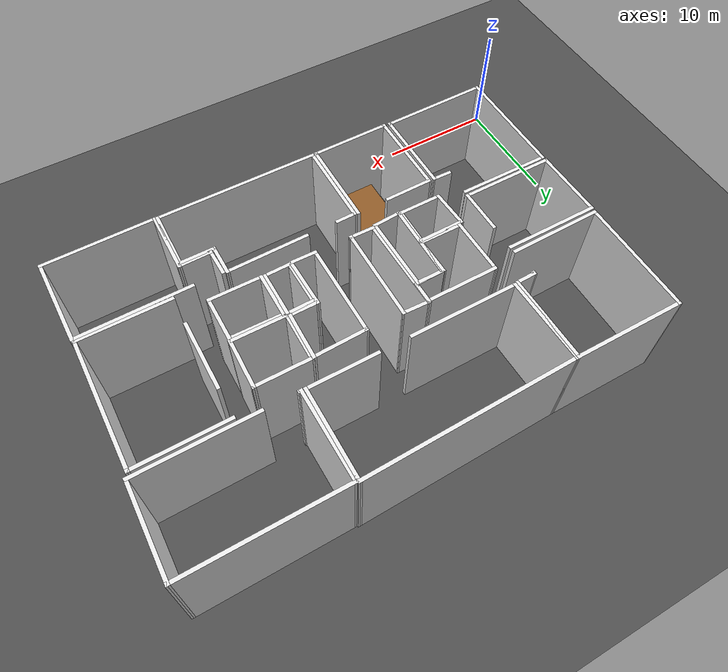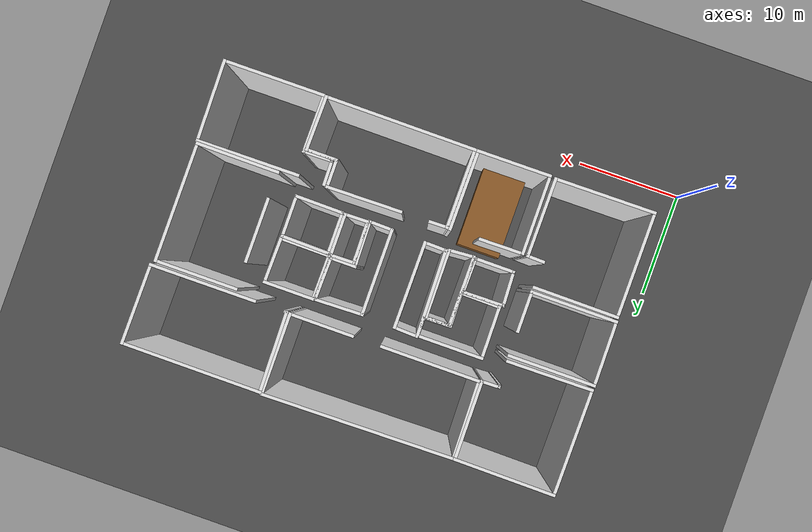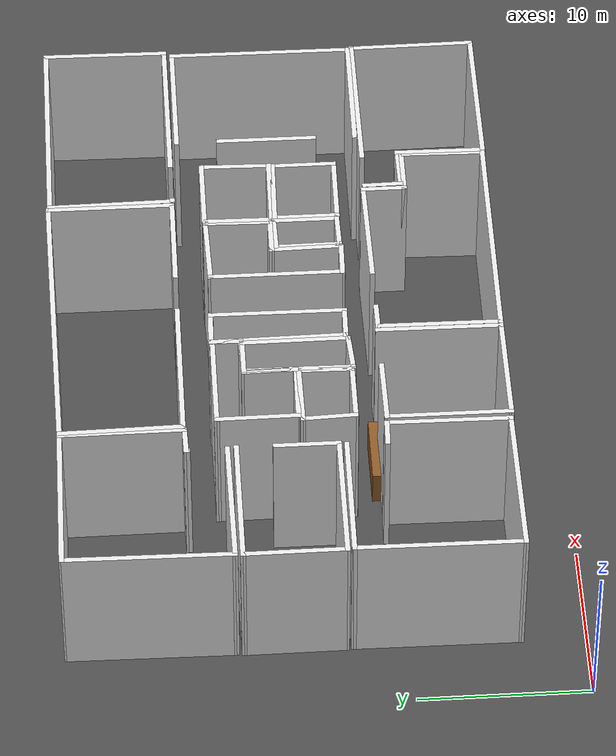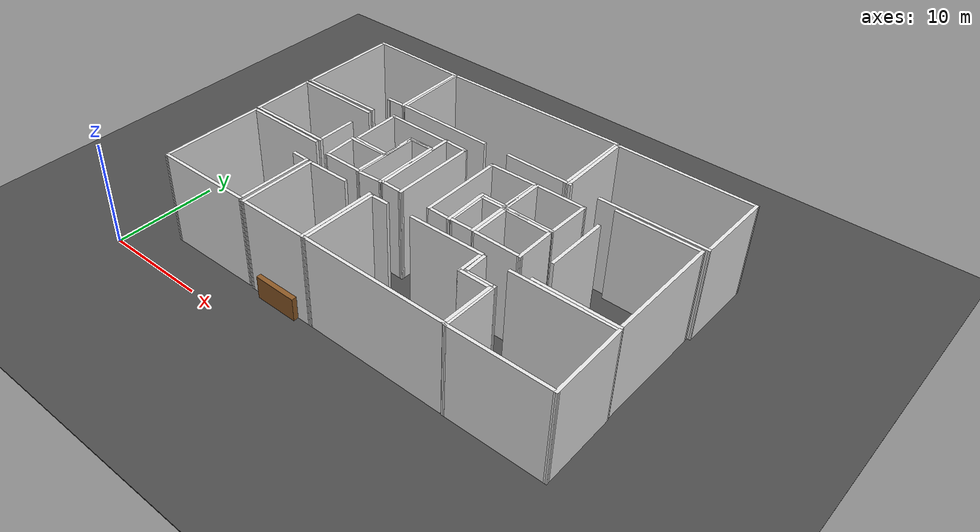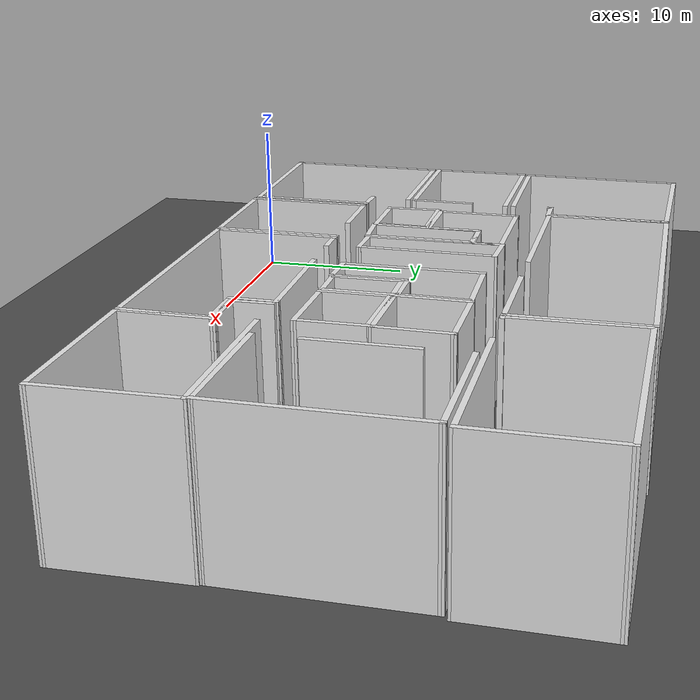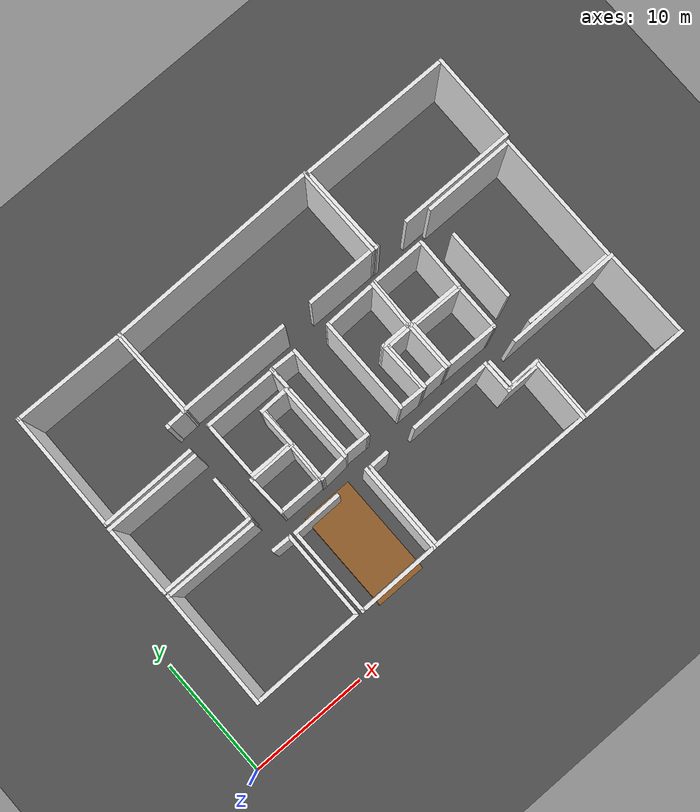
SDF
<?xml version="1.0"?>
<sdf version="1.6">
  <world name="hstm_lite_from_uploaded_office_map">
    <include><uri>model://sun</uri></include>
    <include><uri>model://ground_plane</uri></include>
    <scene><ambient>0.5 0.5 0.5 1</ambient><background>0.7 0.8 0.9 1</background></scene>
    <physics type="ode"><max_step_size>0.001</max_step_size><real_time_factor>1</real_time_factor></physics>

  <model name="visible_ground">
    <static>true</static>
    <pose>0 0 -0.05 0 0 0</pose>
    <link name="link">
      <visual name="v">
        <geometry><box><size>200 200 0.1</size></box></geometry>
        <material><ambient>0.3 0.3 0.3 1</ambient></material>
      </visual>
    </link>
  </model>

  <model name="wall_0_0">
    <static>true</static>
    <pose>39.5415 11.3295 4.5000 0 0 -0.00447</pose>
    <link name="link">
      <collision name="c">
        <geometry><box><size>7.6771 0.30000000000000004 9.0</size></box></geometry>
      </collision>
      <visual name="v">
        <geometry><box><size>7.6771 0.30000000000000004 9.0</size></box></geometry>
        <material><ambient>0.8 0.8 0.8 1</ambient><diffuse>0.9 0.9 0.9 1</diffuse></material>
      </visual>
    </link>
  </model>
  <model name="wall_1_0">
    <static>true</static>
    <pose>43.2525 16.6950 4.5000 0 0 1.56662</pose>
    <link name="link">
      <collision name="c">
        <geometry><box><size>11.0641 0.30000000000000004 9.0</size></box></geometry>
      </collision>
      <visual name="v">
        <geometry><box><size>11.0641 0.30000000000000004 9.0</size></box></geometry>
        <material><ambient>0.8 0.8 0.8 1</ambient><diffuse>0.9 0.9 0.9 1</diffuse></material>
      </visual>
    </link>
  </model>
  <model name="wall_2_0">
    <static>true</static>
    <pose>39.5820 22.0725 4.5000 0 0 -3.14037</pose>
    <link name="link">
      <collision name="c">
        <geometry><box><size>7.6860 0.30000000000000004 9.0</size></box></geometry>
      </collision>
      <visual name="v">
        <geometry><box><size>7.6860 0.30000000000000004 9.0</size></box></geometry>
        <material><ambient>0.8 0.8 0.8 1</ambient><diffuse>0.9 0.9 0.9 1</diffuse></material>
      </visual>
    </link>
  </model>
  <model name="wall_3_0">
    <static>true</static>
    <pose>35.8709 16.6793 4.5000 0 0 -1.57415</pose>
    <link name="link">
      <collision name="c">
        <geometry><box><size>6.0000 0.30000000000000004 9.0</size></box></geometry>
      </collision>
      <visual name="v">
        <geometry><box><size>6.0000 0.30000000000000004 9.0</size></box></geometry>
        <material><ambient>0.8 0.8 0.8 1</ambient><diffuse>0.9 0.9 0.9 1</diffuse></material>
      </visual>
    </link>
  </model>
  <model name="wall_4_0">
    <static>true</static>
    <pose>16.8225 3.8085 4.5000 0 0 0.00592</pose>
    <link name="link">
      <collision name="c">
        <geometry><box><size>6.8851 0.30000000000000004 9.0</size></box></geometry>
      </collision>
      <visual name="v">
        <geometry><box><size>6.8851 0.30000000000000004 9.0</size></box></geometry>
        <material><ambient>0.8 0.8 0.8 1</ambient><diffuse>0.9 0.9 0.9 1</diffuse></material>
      </visual>
    </link>
  </model>
  <model name="wall_5_0">
    <static>true</static>
    <pose>20.1375 7.4145 4.5000 0 0 1.56452</pose>
    <link name="link">
      <collision name="c">
        <geometry><box><size>7.4731 0.30000000000000004 9.0</size></box></geometry>
      </collision>
      <visual name="v">
        <geometry><box><size>7.4731 0.30000000000000004 9.0</size></box></geometry>
        <material><ambient>0.8 0.8 0.8 1</ambient><diffuse>0.9 0.9 0.9 1</diffuse></material>
      </visual>
    </link>
  </model>
  <model name="wall_6_1">
    <static>true</static>
    <pose>15.4702 10.9458 4.5000 0 0 -3.12983</pose>
    <link name="link">
      <collision name="c">
        <geometry><box><size>4.1806 0.30000000000000004 9.0</size></box></geometry>
      </collision>
      <visual name="v">
        <geometry><box><size>4.1806 0.30000000000000004 9.0</size></box></geometry>
        <material><ambient>0.8 0.8 0.8 1</ambient><diffuse>0.9 0.9 0.9 1</diffuse></material>
      </visual>
    </link>
  </model>
  <model name="wall_7_0">
    <static>true</static>
    <pose>13.5300 7.3560 4.5000 0 0 -1.57080</pose>
    <link name="link">
      <collision name="c">
        <geometry><box><size>7.4340 0.30000000000000004 9.0</size></box></geometry>
      </collision>
      <visual name="v">
        <geometry><box><size>7.4340 0.30000000000000004 9.0</size></box></geometry>
        <material><ambient>0.8 0.8 0.8 1</ambient><diffuse>0.9 0.9 0.9 1</diffuse></material>
      </visual>
    </link>
  </model>
  <model name="wall_8_0">
    <static>true</static>
    <pose>31.1399 22.5121 4.5000 0 0 0.00265</pose>
    <link name="link">
      <collision name="c">
        <geometry><box><size>0.4077 0.30000000000000004 9.0</size></box></geometry>
      </collision>
      <visual name="v">
        <geometry><box><size>0.4077 0.30000000000000004 9.0</size></box></geometry>
        <material><ambient>0.8 0.8 0.8 1</ambient><diffuse>0.9 0.9 0.9 1</diffuse></material>
      </visual>
    </link>
  </model>
  <model name="wall_8_1">
    <static>true</static>
    <pose>38.7823 22.5324 4.5000 0 0 0.00265</pose>
    <link name="link">
      <collision name="c">
        <geometry><box><size>9.8194 0.30000000000000004 9.0</size></box></geometry>
      </collision>
      <visual name="v">
        <geometry><box><size>9.8194 0.30000000000000004 9.0</size></box></geometry>
        <material><ambient>0.8 0.8 0.8 1</ambient><diffuse>0.9 0.9 0.9 1</diffuse></material>
      </visual>
    </link>
  </model>
  <model name="wall_9_0">
    <static>true</static>
    <pose>43.5825 26.1510 4.5000 0 0 1.55957</pose>
    <link name="link">
      <collision name="c">
        <geometry><box><size>7.5125 0.30000000000000004 9.0</size></box></geometry>
      </collision>
      <visual name="v">
        <geometry><box><size>7.5125 0.30000000000000004 9.0</size></box></geometry>
        <material><ambient>0.8 0.8 0.8 1</ambient><diffuse>0.9 0.9 0.9 1</diffuse></material>
      </visual>
    </link>
  </model>
  <model name="wall_10_0">
    <static>true</static>
    <pose>37.2990 29.7765 4.5000 0 0 3.13851</pose>
    <link name="link">
      <collision name="c">
        <geometry><box><size>12.9481 0.30000000000000004 9.0</size></box></geometry>
      </collision>
      <visual name="v">
        <geometry><box><size>12.9481 0.30000000000000004 9.0</size></box></geometry>
        <material><ambient>0.8 0.8 0.8 1</ambient><diffuse>0.9 0.9 0.9 1</diffuse></material>
      </visual>
    </link>
  </model>
  <model name="wall_11_0">
    <static>true</static>
    <pose>31.0305 26.1540 4.5000 0 0 -1.55556</pose>
    <link name="link">
      <collision name="c">
        <geometry><box><size>7.5848 0.30000000000000004 9.0</size></box></geometry>
      </collision>
      <visual name="v">
        <geometry><box><size>7.5848 0.30000000000000004 9.0</size></box></geometry>
        <material><ambient>0.8 0.8 0.8 1</ambient><diffuse>0.9 0.9 0.9 1</diffuse></material>
      </visual>
    </link>
  </model>
  <model name="wall_12_0">
    <static>true</static>
    <pose>8.5815 29.6790 4.5000 0 0 -0.00856</pose>
    <link name="link">
      <collision name="c">
        <geometry><box><size>9.4173 0.30000000000000004 9.0</size></box></geometry>
      </collision>
      <visual name="v">
        <geometry><box><size>9.4173 0.30000000000000004 9.0</size></box></geometry>
        <material><ambient>0.8 0.8 0.8 1</ambient><diffuse>0.9 0.9 0.9 1</diffuse></material>
      </visual>
    </link>
  </model>
  <model name="wall_13_0">
    <static>true</static>
    <pose>13.1610 26.0730 4.5000 0 0 -1.56491</pose>
    <link name="link">
      <collision name="c">
        <geometry><box><size>7.4341 0.30000000000000004 9.0</size></box></geometry>
      </collision>
      <visual name="v">
        <geometry><box><size>7.4341 0.30000000000000004 9.0</size></box></geometry>
        <material><ambient>0.8 0.8 0.8 1</ambient><diffuse>0.9 0.9 0.9 1</diffuse></material>
      </visual>
    </link>
  </model>
  <model name="wall_14_0">
    <static>true</static>
    <pose>12.3975 22.4865 4.5000 0 0 -3.11674</pose>
    <link name="link">
      <collision name="c">
        <geometry><box><size>1.8695 0.30000000000000004 9.0</size></box></geometry>
      </collision>
      <visual name="v">
        <geometry><box><size>1.8695 0.30000000000000004 9.0</size></box></geometry>
        <material><ambient>0.8 0.8 0.8 1</ambient><diffuse>0.9 0.9 0.9 1</diffuse></material>
      </visual>
    </link>
  </model>
  <model name="wall_15_0">
    <static>true</static>
    <pose>11.6136 22.4312 4.5000 0 0 -1.55285</pose>
    <link name="link">
      <collision name="c">
        <geometry><box><size>0.3716 0.30000000000000004 9.0</size></box></geometry>
      </collision>
      <visual name="v">
        <geometry><box><size>0.3716 0.30000000000000004 9.0</size></box></geometry>
        <material><ambient>0.8 0.8 0.8 1</ambient><diffuse>0.9 0.9 0.9 1</diffuse></material>
      </visual>
    </link>
  </model>
  <model name="wall_16_0">
    <static>true</static>
    <pose>7.7955 20.0880 4.5000 0 0 -3.13149</pose>
    <link name="link">
      <collision name="c">
        <geometry><box><size>8.0194 0.30000000000000004 9.0</size></box></geometry>
      </collision>
      <visual name="v">
        <geometry><box><size>8.0194 0.30000000000000004 9.0</size></box></geometry>
        <material><ambient>0.8 0.8 0.8 1</ambient><diffuse>0.9 0.9 0.9 1</diffuse></material>
      </visual>
    </link>
  </model>
  <model name="wall_17_0">
    <static>true</static>
    <pose>3.9795 24.8835 4.5000 0 0 1.56180</pose>
    <link name="link">
      <collision name="c">
        <geometry><box><size>9.9694 0.30000000000000004 9.0</size></box></geometry>
      </collision>
      <visual name="v">
        <geometry><box><size>9.9694 0.30000000000000004 9.0</size></box></geometry>
        <material><ambient>0.8 0.8 0.8 1</ambient><diffuse>0.9 0.9 0.9 1</diffuse></material>
      </visual>
    </link>
  </model>
  <model name="wall_18_0">
    <static>true</static>
    <pose>7.7970 19.6200 4.5000 0 0 0.00000</pose>
    <link name="link">
      <collision name="c">
        <geometry><box><size>8.1060 0.30000000000000004 9.0</size></box></geometry>
      </collision>
      <visual name="v">
        <geometry><box><size>8.1060 0.30000000000000004 9.0</size></box></geometry>
        <material><ambient>0.8 0.8 0.8 1</ambient><diffuse>0.9 0.9 0.9 1</diffuse></material>
      </visual>
    </link>
  </model>
  <model name="wall_19_0">
    <static>true</static>
    <pose>11.7000 15.5790 4.5000 0 0 -1.57080</pose>
    <link name="link">
      <collision name="c">
        <geometry><box><size>3.9180 0.30000000000000004 9.0</size></box></geometry>
      </collision>
      <visual name="v">
        <geometry><box><size>3.9180 0.30000000000000004 9.0</size></box></geometry>
        <material><ambient>0.8 0.8 0.8 1</ambient><diffuse>0.9 0.9 0.9 1</diffuse></material>
      </visual>
    </link>
  </model>
  <model name="wall_20_0">
    <static>true</static>
    <pose>7.8180 13.7700 4.5000 0 0 3.14159</pose>
    <link name="link">
      <collision name="c">
        <geometry><box><size>8.0640 0.30000000000000004 9.0</size></box></geometry>
      </collision>
      <visual name="v">
        <geometry><box><size>8.0640 0.30000000000000004 9.0</size></box></geometry>
        <material><ambient>0.8 0.8 0.8 1</ambient><diffuse>0.9 0.9 0.9 1</diffuse></material>
      </visual>
    </link>
  </model>
  <model name="wall_21_0">
    <static>true</static>
    <pose>3.9150 16.6950 4.5000 0 0 1.57798</pose>
    <link name="link">
      <collision name="c">
        <geometry><box><size>6.1502 0.30000000000000004 9.0</size></box></geometry>
      </collision>
      <visual name="v">
        <geometry><box><size>6.1502 0.30000000000000004 9.0</size></box></geometry>
        <material><ambient>0.8 0.8 0.8 1</ambient><diffuse>0.9 0.9 0.9 1</diffuse></material>
      </visual>
    </link>
  </model>
  <model name="wall_22_0">
    <static>true</static>
    <pose>7.7970 13.3605 4.5000 0 0 -0.00511</pose>
    <link name="link">
      <collision name="c">
        <geometry><box><size>7.9321 0.30000000000000004 9.0</size></box></geometry>
      </collision>
      <visual name="v">
        <geometry><box><size>7.9321 0.30000000000000004 9.0</size></box></geometry>
        <material><ambient>0.8 0.8 0.8 1</ambient><diffuse>0.9 0.9 0.9 1</diffuse></material>
      </visual>
    </link>
  </model>
  <model name="wall_24_0">
    <static>true</static>
    <pose>12.3330 10.9815 4.5000 0 0 -0.02708</pose>
    <link name="link">
      <collision name="c">
        <geometry><box><size>1.7405 0.30000000000000004 9.0</size></box></geometry>
      </collision>
      <visual name="v">
        <geometry><box><size>1.7405 0.30000000000000004 9.0</size></box></geometry>
        <material><ambient>0.8 0.8 0.8 1</ambient><diffuse>0.9 0.9 0.9 1</diffuse></material>
      </visual>
    </link>
  </model>
  <model name="wall_25_0">
    <static>true</static>
    <pose>13.0305 7.4145 4.5000 0 0 -1.57714</pose>
    <link name="link">
      <collision name="c">
        <geometry><box><size>7.3951 0.30000000000000004 9.0</size></box></geometry>
      </collision>
      <visual name="v">
        <geometry><box><size>7.3951 0.30000000000000004 9.0</size></box></geometry>
        <material><ambient>0.8 0.8 0.8 1</ambient><diffuse>0.9 0.9 0.9 1</diffuse></material>
      </visual>
    </link>
  </model>
  <model name="wall_26_0">
    <static>true</static>
    <pose>8.4720 3.8280 4.5000 0 0 -3.13299</pose>
    <link name="link">
      <collision name="c">
        <geometry><box><size>9.3723 0.30000000000000004 9.0</size></box></geometry>
      </collision>
      <visual name="v">
        <geometry><box><size>9.3723 0.30000000000000004 9.0</size></box></geometry>
        <material><ambient>0.8 0.8 0.8 1</ambient><diffuse>0.9 0.9 0.9 1</diffuse></material>
      </visual>
    </link>
  </model>
  <model name="wall_27_0">
    <static>true</static>
    <pose>3.9585 8.5845 4.5000 0 0 1.56610</pose>
    <link name="link">
      <collision name="c">
        <geometry><box><size>9.8911 0.30000000000000004 9.0</size></box></geometry>
      </collision>
      <visual name="v">
        <geometry><box><size>9.8911 0.30000000000000004 9.0</size></box></geometry>
        <material><ambient>0.8 0.8 0.8 1</ambient><diffuse>0.9 0.9 0.9 1</diffuse></material>
      </visual>
    </link>
  </model>
  <model name="wall_28_0">
    <static>true</static>
    <pose>21.2257 10.9729 4.5000 0 0 0.01425</pose>
    <link name="link">
      <collision name="c">
        <geometry><box><size>1.8255 0.30000000000000004 9.0</size></box></geometry>
      </collision>
      <visual name="v">
        <geometry><box><size>1.8255 0.30000000000000004 9.0</size></box></geometry>
        <material><ambient>0.8 0.8 0.8 1</ambient><diffuse>0.9 0.9 0.9 1</diffuse></material>
      </visual>
    </link>
  </model>
  <model name="wall_28_1">
    <static>true</static>
    <pose>28.0491 11.0701 4.5000 0 0 0.01425</pose>
    <link name="link">
      <collision name="c">
        <geometry><box><size>7.0226 0.30000000000000004 9.0</size></box></geometry>
      </collision>
      <visual name="v">
        <geometry><box><size>7.0226 0.30000000000000004 9.0</size></box></geometry>
        <material><ambient>0.8 0.8 0.8 1</ambient><diffuse>0.9 0.9 0.9 1</diffuse></material>
      </visual>
    </link>
  </model>
  <model name="wall_29_0">
    <static>true</static>
    <pose>31.4100 9.8895 4.5000 0 0 -1.57080</pose>
    <link name="link">
      <collision name="c">
        <geometry><box><size>2.7570 0.30000000000000004 9.0</size></box></geometry>
      </collision>
      <visual name="v">
        <geometry><box><size>2.7570 0.30000000000000004 9.0</size></box></geometry>
        <material><ambient>0.8 0.8 0.8 1</ambient><diffuse>0.9 0.9 0.9 1</diffuse></material>
      </visual>
    </link>
  </model>
  <model name="wall_30_0">
    <static>true</static>
    <pose>32.7840 8.6610 4.5000 0 0 0.00000</pose>
    <link name="link">
      <collision name="c">
        <geometry><box><size>3.0480 0.30000000000000004 9.0</size></box></geometry>
      </collision>
      <visual name="v">
        <geometry><box><size>3.0480 0.30000000000000004 9.0</size></box></geometry>
        <material><ambient>0.8 0.8 0.8 1</ambient><diffuse>0.9 0.9 0.9 1</diffuse></material>
      </visual>
    </link>
  </model>
  <model name="wall_31_0">
    <static>true</static>
    <pose>34.1160 6.2250 4.5000 0 0 -1.58804</pose>
    <link name="link">
      <collision name="c">
        <geometry><box><size>5.1727 0.30000000000000004 9.0</size></box></geometry>
      </collision>
      <visual name="v">
        <geometry><box><size>5.1727 0.30000000000000004 9.0</size></box></geometry>
        <material><ambient>0.8 0.8 0.8 1</ambient><diffuse>0.9 0.9 0.9 1</diffuse></material>
      </visual>
    </link>
  </model>
  <model name="wall_32_0">
    <static>true</static>
    <pose>27.2475 3.8085 4.5000 0 0 3.13874</pose>
    <link name="link">
      <collision name="c">
        <geometry><box><size>13.9531 0.30000000000000004 9.0</size></box></geometry>
      </collision>
      <visual name="v">
        <geometry><box><size>13.9531 0.30000000000000004 9.0</size></box></geometry>
        <material><ambient>0.8 0.8 0.8 1</ambient><diffuse>0.9 0.9 0.9 1</diffuse></material>
      </visual>
    </link>
  </model>
  <model name="wall_33_0">
    <static>true</static>
    <pose>20.4420 7.3950 4.5000 0 0 1.56491</pose>
    <link name="link">
      <collision name="c">
        <geometry><box><size>7.4341 0.30000000000000004 9.0</size></box></geometry>
      </collision>
      <visual name="v">
        <geometry><box><size>7.4341 0.30000000000000004 9.0</size></box></geometry>
        <material><ambient>0.8 0.8 0.8 1</ambient><diffuse>0.9 0.9 0.9 1</diffuse></material>
      </visual>
    </link>
  </model>
  <model name="wall_34_0">
    <static>true</static>
    <pose>38.7245 11.0481 4.5000 0 0 0.00673</pose>
    <link name="link">
      <collision name="c">
        <geometry><box><size>9.4852 0.30000000000000004 9.0</size></box></geometry>
      </collision>
      <visual name="v">
        <geometry><box><size>9.4852 0.30000000000000004 9.0</size></box></geometry>
        <material><ambient>0.8 0.8 0.8 1</ambient><diffuse>0.9 0.9 0.9 1</diffuse></material>
      </visual>
    </link>
  </model>
  <model name="wall_35_0">
    <static>true</static>
    <pose>43.3620 7.4340 4.5000 0 0 -1.55845</pose>
    <link name="link">
      <collision name="c">
        <geometry><box><size>7.5906 0.30000000000000004 9.0</size></box></geometry>
      </collision>
      <visual name="v">
        <geometry><box><size>7.5906 0.30000000000000004 9.0</size></box></geometry>
        <material><ambient>0.8 0.8 0.8 1</ambient><diffuse>0.9 0.9 0.9 1</diffuse></material>
      </visual>
    </link>
  </model>
  <model name="wall_36_0">
    <static>true</static>
    <pose>38.8485 3.7695 4.5000 0 0 -3.13731</pose>
    <link name="link">
      <collision name="c">
        <geometry><box><size>9.4171 0.30000000000000004 9.0</size></box></geometry>
      </collision>
      <visual name="v">
        <geometry><box><size>9.4171 0.30000000000000004 9.0</size></box></geometry>
        <material><ambient>0.8 0.8 0.8 1</ambient><diffuse>0.9 0.9 0.9 1</diffuse></material>
      </visual>
    </link>
  </model>
  <model name="wall_37_0">
    <static>true</static>
    <pose>34.3125 6.3225 4.5000 0 0 1.56205</pose>
    <link name="link">
      <collision name="c">
        <geometry><box><size>5.4452 0.30000000000000004 9.0</size></box></geometry>
      </collision>
      <visual name="v">
        <geometry><box><size>5.4452 0.30000000000000004 9.0</size></box></geometry>
        <material><ambient>0.8 0.8 0.8 1</ambient><diffuse>0.9 0.9 0.9 1</diffuse></material>
      </visual>
    </link>
  </model>
  <model name="wall_38_0">
    <static>true</static>
    <pose>33.0480 8.8755 4.5000 0 0 -3.12644</pose>
    <link name="link">
      <collision name="c">
        <geometry><box><size>2.8743 0.30000000000000004 9.0</size></box></geometry>
      </collision>
      <visual name="v">
        <geometry><box><size>2.8743 0.30000000000000004 9.0</size></box></geometry>
        <material><ambient>0.8 0.8 0.8 1</ambient><diffuse>0.9 0.9 0.9 1</diffuse></material>
      </visual>
    </link>
  </model>
  <model name="wall_39_0">
    <static>true</static>
    <pose>31.7400 9.9285 4.5000 0 0 1.59037</pose>
    <link name="link">
      <collision name="c">
        <geometry><box><size>2.4454 0.30000000000000004 9.0</size></box></geometry>
      </collision>
      <visual name="v">
        <geometry><box><size>2.4454 0.30000000000000004 9.0</size></box></geometry>
        <material><ambient>0.8 0.8 0.8 1</ambient><diffuse>0.9 0.9 0.9 1</diffuse></material>
      </visual>
    </link>
  </model>
  <model name="wall_40_0">
    <static>true</static>
    <pose>15.4515 15.7395 4.5000 0 0 0.01065</pose>
    <link name="link">
      <collision name="c">
        <geometry><box><size>3.9632 0.30000000000000004 9.0</size></box></geometry>
      </collision>
      <visual name="v">
        <geometry><box><size>3.9632 0.30000000000000004 9.0</size></box></geometry>
        <material><ambient>0.8 0.8 0.8 1</ambient><diffuse>0.9 0.9 0.9 1</diffuse></material>
      </visual>
    </link>
  </model>
  <model name="wall_41_0">
    <static>true</static>
    <pose>17.2605 14.2185 4.5000 0 0 -1.58540</pose>
    <link name="link">
      <collision name="c">
        <geometry><box><size>3.3813 0.30000000000000004 9.0</size></box></geometry>
      </collision>
      <visual name="v">
        <geometry><box><size>3.3813 0.30000000000000004 9.0</size></box></geometry>
        <material><ambient>0.8 0.8 0.8 1</ambient><diffuse>0.9 0.9 0.9 1</diffuse></material>
      </visual>
    </link>
  </model>
  <model name="wall_42_0">
    <static>true</static>
    <pose>15.4950 12.6780 4.5000 0 0 3.14159</pose>
    <link name="link">
      <collision name="c">
        <geometry><box><size>3.7860 0.30000000000000004 9.0</size></box></geometry>
      </collision>
      <visual name="v">
        <geometry><box><size>3.7860 0.30000000000000004 9.0</size></box></geometry>
        <material><ambient>0.8 0.8 0.8 1</ambient><diffuse>0.9 0.9 0.9 1</diffuse></material>
      </visual>
    </link>
  </model>
  <model name="wall_43_0">
    <static>true</static>
    <pose>13.6860 14.1990 4.5000 0 0 1.61416</pose>
    <link name="link">
      <collision name="c">
        <geometry><box><size>3.3449 0.30000000000000004 9.0</size></box></geometry>
      </collision>
      <visual name="v">
        <geometry><box><size>3.3449 0.30000000000000004 9.0</size></box></geometry>
        <material><ambient>0.8 0.8 0.8 1</ambient><diffuse>0.9 0.9 0.9 1</diffuse></material>
      </visual>
    </link>
  </model>
  <model name="wall_44_0">
    <static>true</static>
    <pose>28.0980 16.5585 4.5000 0 0 0.01862</pose>
    <link name="link">
      <collision name="c">
        <geometry><box><size>2.3944 0.30000000000000004 9.0</size></box></geometry>
      </collision>
      <visual name="v">
        <geometry><box><size>2.3944 0.30000000000000004 9.0</size></box></geometry>
        <material><ambient>0.8 0.8 0.8 1</ambient><diffuse>0.9 0.9 0.9 1</diffuse></material>
      </visual>
    </link>
  </model>
  <model name="wall_45_0">
    <static>true</static>
    <pose>29.1450 14.7060 4.5000 0 0 -1.57080</pose>
    <link name="link">
      <collision name="c">
        <geometry><box><size>4.0440 0.30000000000000004 9.0</size></box></geometry>
      </collision>
      <visual name="v">
        <geometry><box><size>4.0440 0.30000000000000004 9.0</size></box></geometry>
        <material><ambient>0.8 0.8 0.8 1</ambient><diffuse>0.9 0.9 0.9 1</diffuse></material>
      </visual>
    </link>
  </model>
  <model name="wall_46_0">
    <static>true</static>
    <pose>28.1205 12.8145 4.5000 0 0 -3.12256</pose>
    <link name="link">
      <collision name="c">
        <geometry><box><size>2.3494 0.30000000000000004 9.0</size></box></geometry>
      </collision>
      <visual name="v">
        <geometry><box><size>2.3494 0.30000000000000004 9.0</size></box></geometry>
        <material><ambient>0.8 0.8 0.8 1</ambient><diffuse>0.9 0.9 0.9 1</diffuse></material>
      </visual>
    </link>
  </model>
  <model name="wall_47_0">
    <static>true</static>
    <pose>27.0735 14.6670 4.5000 0 0 1.58281</pose>
    <link name="link">
      <collision name="c">
        <geometry><box><size>4.0443 0.30000000000000004 9.0</size></box></geometry>
      </collision>
      <visual name="v">
        <geometry><box><size>4.0443 0.30000000000000004 9.0</size></box></geometry>
        <material><ambient>0.8 0.8 0.8 1</ambient><diffuse>0.9 0.9 0.9 1</diffuse></material>
      </visual>
    </link>
  </model>
  <model name="wall_48_0">
    <static>true</static>
    <pose>31.5225 16.4610 4.5000 0 0 -0.01845</pose>
    <link name="link">
      <collision name="c">
        <geometry><box><size>4.5277 0.30000000000000004 9.0</size></box></geometry>
      </collision>
      <visual name="v">
        <geometry><box><size>4.5277 0.30000000000000004 9.0</size></box></geometry>
        <material><ambient>0.8 0.8 0.8 1</ambient><diffuse>0.9 0.9 0.9 1</diffuse></material>
      </visual>
    </link>
  </model>
  <model name="wall_49_0">
    <static>true</static>
    <pose>33.6375 14.5890 4.5000 0 0 -1.56998</pose>
    <link name="link">
      <collision name="c">
        <geometry><box><size>3.9660 0.30000000000000004 9.0</size></box></geometry>
      </collision>
      <visual name="v">
        <geometry><box><size>3.9660 0.30000000000000004 9.0</size></box></geometry>
        <material><ambient>0.8 0.8 0.8 1</ambient><diffuse>0.9 0.9 0.9 1</diffuse></material>
      </visual>
    </link>
  </model>
  <model name="wall_50_0">
    <static>true</static>
    <pose>31.5240 12.7755 4.5000 0 0 3.13237</pose>
    <link name="link">
      <collision name="c">
        <geometry><box><size>4.5302 0.30000000000000004 9.0</size></box></geometry>
      </collision>
      <visual name="v">
        <geometry><box><size>4.5302 0.30000000000000004 9.0</size></box></geometry>
        <material><ambient>0.8 0.8 0.8 1</ambient><diffuse>0.9 0.9 0.9 1</diffuse></material>
      </visual>
    </link>
  </model>
  <model name="wall_51_0">
    <static>true</static>
    <pose>29.4090 14.6475 4.5000 0 0 1.57080</pose>
    <link name="link">
      <collision name="c">
        <geometry><box><size>4.0050 0.30000000000000004 9.0</size></box></geometry>
      </collision>
      <visual name="v">
        <geometry><box><size>4.0050 0.30000000000000004 9.0</size></box></geometry>
        <material><ambient>0.8 0.8 0.8 1</ambient><diffuse>0.9 0.9 0.9 1</diffuse></material>
      </visual>
    </link>
  </model>
  <model name="wall_52_0">
    <static>true</static>
    <pose>20.8140 20.6730 4.5000 0 0 -0.03723</pose>
    <link name="link">
      <collision name="c">
        <geometry><box><size>2.3955 0.30000000000000004 9.0</size></box></geometry>
      </collision>
      <visual name="v">
        <geometry><box><size>2.3955 0.30000000000000004 9.0</size></box></geometry>
        <material><ambient>0.8 0.8 0.8 1</ambient><diffuse>0.9 0.9 0.9 1</diffuse></material>
      </visual>
    </link>
  </model>
  <model name="wall_53_0">
    <static>true</static>
    <pose>21.8400 16.7340 4.5000 0 0 -1.57618</pose>
    <link name="link">
      <collision name="c">
        <geometry><box><size>8.1001 0.30000000000000004 9.0</size></box></geometry>
      </collision>
      <visual name="v">
        <geometry><box><size>8.1001 0.30000000000000004 9.0</size></box></geometry>
        <material><ambient>0.8 0.8 0.8 1</ambient><diffuse>0.9 0.9 0.9 1</diffuse></material>
      </visual>
    </link>
  </model>
  <model name="wall_54_0">
    <static>true</static>
    <pose>20.8590 12.8535 4.5000 0 0 3.12128</pose>
    <link name="link">
      <collision name="c">
        <geometry><box><size>2.2204 0.30000000000000004 9.0</size></box></geometry>
      </collision>
      <visual name="v">
        <geometry><box><size>2.2204 0.30000000000000004 9.0</size></box></geometry>
        <material><ambient>0.8 0.8 0.8 1</ambient><diffuse>0.9 0.9 0.9 1</diffuse></material>
      </visual>
    </link>
  </model>
  <model name="wall_55_0">
    <static>true</static>
    <pose>19.8330 16.7925 4.5000 0 0 1.58763</pose>
    <link name="link">
      <collision name="c">
        <geometry><box><size>8.1401 0.30000000000000004 9.0</size></box></geometry>
      </collision>
      <visual name="v">
        <geometry><box><size>8.1401 0.30000000000000004 9.0</size></box></geometry>
        <material><ambient>0.8 0.8 0.8 1</ambient><diffuse>0.9 0.9 0.9 1</diffuse></material>
      </visual>
    </link>
  </model>
  <model name="wall_56_0">
    <static>true</static>
    <pose>27.0075 20.5755 4.5000 0 0 0.02736</pose>
    <link name="link">
      <collision name="c">
        <geometry><box><size>4.5766 0.30000000000000004 9.0</size></box></geometry>
      </collision>
      <visual name="v">
        <geometry><box><size>4.5766 0.30000000000000004 9.0</size></box></geometry>
        <material><ambient>0.8 0.8 0.8 1</ambient><diffuse>0.9 0.9 0.9 1</diffuse></material>
      </visual>
    </link>
  </model>
  <model name="wall_57_0">
    <static>true</static>
    <pose>29.1015 18.7230 4.5000 0 0 -1.59356</pose>
    <link name="link">
      <collision name="c">
        <geometry><box><size>4.1230 0.30000000000000004 9.0</size></box></geometry>
      </collision>
      <visual name="v">
        <geometry><box><size>4.1230 0.30000000000000004 9.0</size></box></geometry>
        <material><ambient>0.8 0.8 0.8 1</ambient><diffuse>0.9 0.9 0.9 1</diffuse></material>
      </visual>
    </link>
  </model>
  <model name="wall_58_0">
    <static>true</static>
    <pose>27.9450 16.8120 4.5000 0 0 3.14159</pose>
    <link name="link">
      <collision name="c">
        <geometry><box><size>2.5260 0.30000000000000004 9.0</size></box></geometry>
      </collision>
      <visual name="v">
        <geometry><box><size>2.5260 0.30000000000000004 9.0</size></box></geometry>
        <material><ambient>0.8 0.8 0.8 1</ambient><diffuse>0.9 0.9 0.9 1</diffuse></material>
      </visual>
    </link>
  </model>
  <model name="wall_59_0">
    <static>true</static>
    <pose>26.8755 14.7645 4.5000 0 0 -1.54955</pose>
    <link name="link">
      <collision name="c">
        <geometry><box><size>4.3959 0.30000000000000004 9.0</size></box></geometry>
      </collision>
      <visual name="v">
        <geometry><box><size>4.3959 0.30000000000000004 9.0</size></box></geometry>
        <material><ambient>0.8 0.8 0.8 1</ambient><diffuse>0.9 0.9 0.9 1</diffuse></material>
      </visual>
    </link>
  </model>
  <model name="wall_60_0">
    <static>true</static>
    <pose>25.8945 12.7365 4.5000 0 0 3.12256</pose>
    <link name="link">
      <collision name="c">
        <geometry><box><size>2.3494 0.30000000000000004 9.0</size></box></geometry>
      </collision>
      <visual name="v">
        <geometry><box><size>2.3494 0.30000000000000004 9.0</size></box></geometry>
        <material><ambient>0.8 0.8 0.8 1</ambient><diffuse>0.9 0.9 0.9 1</diffuse></material>
      </visual>
    </link>
  </model>
  <model name="wall_61_0">
    <static>true</static>
    <pose>24.8700 16.6365 4.5000 0 0 1.57080</pose>
    <link name="link">
      <collision name="c">
        <geometry><box><size>8.0610 0.30000000000000004 9.0</size></box></geometry>
      </collision>
      <visual name="v">
        <geometry><box><size>8.0610 0.30000000000000004 9.0</size></box></geometry>
        <material><ambient>0.8 0.8 0.8 1</ambient><diffuse>0.9 0.9 0.9 1</diffuse></material>
      </visual>
    </link>
  </model>
  <model name="wall_62_0">
    <static>true</static>
    <pose>17.4345 15.7590 4.5000 0 0 1.56367</pose>
    <link name="link">
      <collision name="c">
        <geometry><box><size>6.6182 0.30000000000000004 9.0</size></box></geometry>
      </collision>
      <visual name="v">
        <geometry><box><size>6.6182 0.30000000000000004 9.0</size></box></geometry>
        <material><ambient>0.8 0.8 0.8 1</ambient><diffuse>0.9 0.9 0.9 1</diffuse></material>
      </visual>
    </link>
  </model>
  <model name="wall_63_0">
    <static>true</static>
    <pose>18.5250 18.9180 4.5000 0 0 0.00000</pose>
    <link name="link">
      <collision name="c">
        <geometry><box><size>2.4360 0.30000000000000004 9.0</size></box></geometry>
      </collision>
      <visual name="v">
        <geometry><box><size>2.4360 0.30000000000000004 9.0</size></box></geometry>
        <material><ambient>0.8 0.8 0.8 1</ambient><diffuse>0.9 0.9 0.9 1</diffuse></material>
      </visual>
    </link>
  </model>
  <model name="wall_64_0">
    <static>true</static>
    <pose>19.6155 15.8370 4.5000 0 0 -1.56349</pose>
    <link name="link">
      <collision name="c">
        <geometry><box><size>6.4622 0.30000000000000004 9.0</size></box></geometry>
      </collision>
      <visual name="v">
        <geometry><box><size>6.4622 0.30000000000000004 9.0</size></box></geometry>
        <material><ambient>0.8 0.8 0.8 1</ambient><diffuse>0.9 0.9 0.9 1</diffuse></material>
      </visual>
    </link>
  </model>
  <model name="wall_65_0">
    <static>true</static>
    <pose>18.5250 12.6780 4.5000 0 0 -3.07163</pose>
    <link name="link">
      <collision name="c">
        <geometry><box><size>2.5315 0.30000000000000004 9.0</size></box></geometry>
      </collision>
      <visual name="v">
        <geometry><box><size>2.5315 0.30000000000000004 9.0</size></box></geometry>
        <material><ambient>0.8 0.8 0.8 1</ambient><diffuse>0.9 0.9 0.9 1</diffuse></material>
      </visual>
    </link>
  </model>
  <model name="wall_66_0">
    <static>true</static>
    <pose>31.5435 20.6730 4.5000 0 0 0.00000</pose>
    <link name="link">
      <collision name="c">
        <geometry><box><size>4.7490 0.30000000000000004 9.0</size></box></geometry>
      </collision>
      <visual name="v">
        <geometry><box><size>4.7490 0.30000000000000004 9.0</size></box></geometry>
        <material><ambient>0.8 0.8 0.8 1</ambient><diffuse>0.9 0.9 0.9 1</diffuse></material>
      </visual>
    </link>
  </model>
  <model name="wall_67_0">
    <static>true</static>
    <pose>33.7245 18.6645 4.5000 0 0 -1.59245</pose>
    <link name="link">
      <collision name="c">
        <geometry><box><size>4.3179 0.30000000000000004 9.0</size></box></geometry>
      </collision>
      <visual name="v">
        <geometry><box><size>4.3179 0.30000000000000004 9.0</size></box></geometry>
        <material><ambient>0.8 0.8 0.8 1</ambient><diffuse>0.9 0.9 0.9 1</diffuse></material>
      </visual>
    </link>
  </model>
  <model name="wall_68_0">
    <static>true</static>
    <pose>31.4775 16.6755 4.5000 0 0 3.13274</pose>
    <link name="link">
      <collision name="c">
        <geometry><box><size>4.7072 0.30000000000000004 9.0</size></box></geometry>
      </collision>
      <visual name="v">
        <geometry><box><size>4.7072 0.30000000000000004 9.0</size></box></geometry>
        <material><ambient>0.8 0.8 0.8 1</ambient><diffuse>0.9 0.9 0.9 1</diffuse></material>
      </visual>
    </link>
  </model>
  <model name="wall_69_0">
    <static>true</static>
    <pose>29.2965 18.6840 4.5000 0 0 1.55948</pose>
    <link name="link">
      <collision name="c">
        <geometry><box><size>4.2783 0.30000000000000004 9.0</size></box></geometry>
      </collision>
      <visual name="v">
        <geometry><box><size>4.2783 0.30000000000000004 9.0</size></box></geometry>
        <material><ambient>0.8 0.8 0.8 1</ambient><diffuse>0.9 0.9 0.9 1</diffuse></material>
      </visual>
    </link>
  </model>
  <model name="wall_70_0">
    <static>true</static>
    <pose>16.7955 20.6340 4.5000 0 0 0.00000</pose>
    <link name="link">
      <collision name="c">
        <geometry><box><size>6.1890 0.30000000000000004 9.0</size></box></geometry>
      </collision>
      <visual name="v">
        <geometry><box><size>6.1890 0.30000000000000004 9.0</size></box></geometry>
        <material><ambient>0.8 0.8 0.8 1</ambient><diffuse>0.9 0.9 0.9 1</diffuse></material>
      </visual>
    </link>
  </model>
  <model name="wall_71_0">
    <static>true</static>
    <pose>19.7400 19.8150 4.5000 0 0 -1.57080</pose>
    <link name="link">
      <collision name="c">
        <geometry><box><size>1.9380 0.30000000000000004 9.0</size></box></geometry>
      </collision>
      <visual name="v">
        <geometry><box><size>1.9380 0.30000000000000004 9.0</size></box></geometry>
        <material><ambient>0.8 0.8 0.8 1</ambient><diffuse>0.9 0.9 0.9 1</diffuse></material>
      </visual>
    </link>
  </model>
  <model name="wall_72_0">
    <static>true</static>
    <pose>18.5400 18.9570 4.5000 0 0 -3.10910</pose>
    <link name="link">
      <collision name="c">
        <geometry><box><size>2.7013 0.30000000000000004 9.0</size></box></geometry>
      </collision>
      <visual name="v">
        <geometry><box><size>2.7013 0.30000000000000004 9.0</size></box></geometry>
        <material><ambient>0.8 0.8 0.8 1</ambient><diffuse>0.9 0.9 0.9 1</diffuse></material>
      </visual>
    </link>
  </model>
  <model name="wall_73_0">
    <static>true</static>
    <pose>17.3625 17.4165 4.5000 0 0 -1.55581</pose>
    <link name="link">
      <collision name="c">
        <geometry><box><size>3.3033 0.30000000000000004 9.0</size></box></geometry>
      </collision>
      <visual name="v">
        <geometry><box><size>3.3033 0.30000000000000004 9.0</size></box></geometry>
        <material><ambient>0.8 0.8 0.8 1</ambient><diffuse>0.9 0.9 0.9 1</diffuse></material>
      </visual>
    </link>
  </model>
  <model name="wall_74_0">
    <static>true</static>
    <pose>15.6405 15.9345 4.5000 0 0 3.13042</pose>
    <link name="link">
      <collision name="c">
        <geometry><box><size>3.7892 0.30000000000000004 9.0</size></box></geometry>
      </collision>
      <visual name="v">
        <geometry><box><size>3.7892 0.30000000000000004 9.0</size></box></geometry>
        <material><ambient>0.8 0.8 0.8 1</ambient><diffuse>0.9 0.9 0.9 1</diffuse></material>
      </visual>
    </link>
  </model>
  <model name="wall_75_0">
    <static>true</static>
    <pose>13.8735 18.2940 4.5000 0 0 1.58041</pose>
    <link name="link">
      <collision name="c">
        <geometry><box><size>4.9802 0.30000000000000004 9.0</size></box></geometry>
      </collision>
      <visual name="v">
        <geometry><box><size>4.9802 0.30000000000000004 9.0</size></box></geometry>
        <material><ambient>0.8 0.8 0.8 1</ambient><diffuse>0.9 0.9 0.9 1</diffuse></material>
      </visual>
    </link>
  </model>
  <model name="wall_76_0">
    <static>true</static>
    <pose>22.0275 29.7645 4.5000 0 0 0.01459</pose>
    <link name="link">
      <collision name="c">
        <geometry><box><size>17.7769 0.30000000000000004 9.0</size></box></geometry>
      </collision>
      <visual name="v">
        <geometry><box><size>17.7769 0.30000000000000004 9.0</size></box></geometry>
        <material><ambient>0.8 0.8 0.8 1</ambient><diffuse>0.9 0.9 0.9 1</diffuse></material>
      </visual>
    </link>
  </model>
  <model name="wall_77_0">
    <static>true</static>
    <pose>30.7650 26.2185 4.5000 0 0 -1.57080</pose>
    <link name="link">
      <collision name="c">
        <geometry><box><size>7.6470 0.30000000000000004 9.0</size></box></geometry>
      </collision>
      <visual name="v">
        <geometry><box><size>7.6470 0.30000000000000004 9.0</size></box></geometry>
        <material><ambient>0.8 0.8 0.8 1</ambient><diffuse>0.9 0.9 0.9 1</diffuse></material>
      </visual>
    </link>
  </model>
  <model name="wall_78_0">
    <static>true</static>
    <pose>27.9046 22.5500 4.5000 0 0 3.13986</pose>
    <link name="link">
      <collision name="c">
        <geometry><box><size>6.0208 0.30000000000000004 9.0</size></box></geometry>
      </collision>
      <visual name="v">
        <geometry><box><size>6.0208 0.30000000000000004 9.0</size></box></geometry>
        <material><ambient>0.8 0.8 0.8 1</ambient><diffuse>0.9 0.9 0.9 1</diffuse></material>
      </visual>
    </link>
  </model>
  <model name="wall_78_1">
    <static>true</static>
    <pose>17.8891 22.5673 4.5000 0 0 3.13986</pose>
    <link name="link">
      <collision name="c">
        <geometry><box><size>9.2102 0.30000000000000004 9.0</size></box></geometry>
      </collision>
      <visual name="v">
        <geometry><box><size>9.2102 0.30000000000000004 9.0</size></box></geometry>
        <material><ambient>0.8 0.8 0.8 1</ambient><diffuse>0.9 0.9 0.9 1</diffuse></material>
      </visual>
    </link>
  </model>
  <model name="wall_79_0">
    <static>true</static>
    <pose>13.3620 26.1060 4.5000 0 0 1.59118</pose>
    <link name="link">
      <collision name="c">
        <geometry><box><size>7.3635 0.30000000000000004 9.0</size></box></geometry>
      </collision>
      <visual name="v">
        <geometry><box><size>7.3635 0.30000000000000004 9.0</size></box></geometry>
        <material><ambient>0.8 0.8 0.8 1</ambient><diffuse>0.9 0.9 0.9 1</diffuse></material>
      </visual>
    </link>
  </model>

    <model name="obj_大会议桌">
      <static>true</static>
      <pose>16.8360 7.3890 1.1250 0 0 0</pose>
      <link name="link">
        <collision name="c">
          <geometry><box><size>4.2000 8.4000 2.2500</size></box></geometry>
        </collision>
        <visual name="v">
          <geometry><box><size>4.2000 8.4000 2.2500</size></box></geometry>
          <material><ambient>0.4 0.25 0.1 1</ambient><diffuse>0.55 0.35 0.15 1</diffuse></material>
        </visual>
      </link>
    </model>
  </world>
</sdf>
